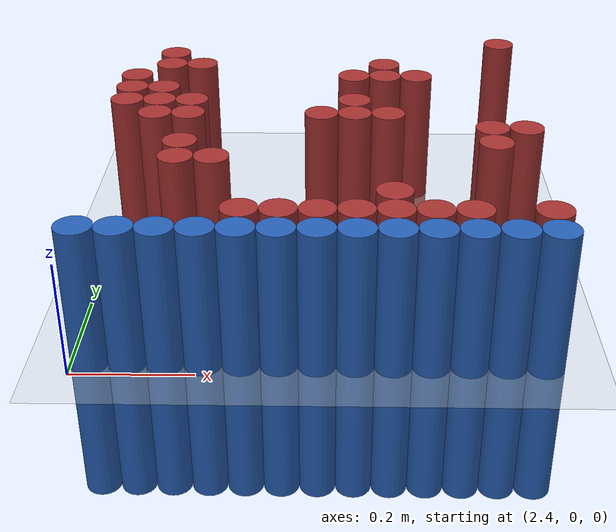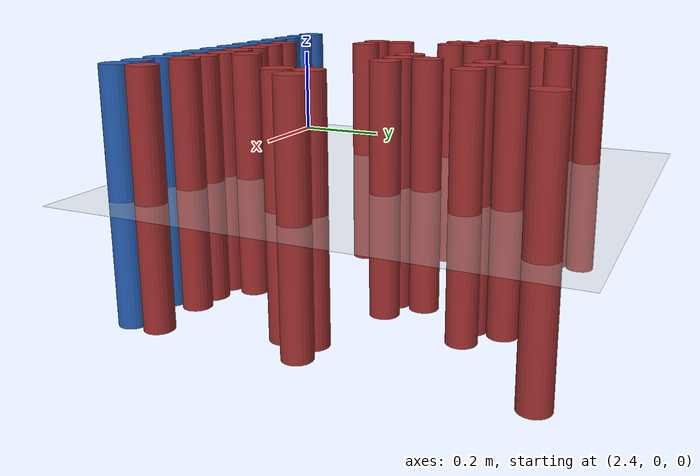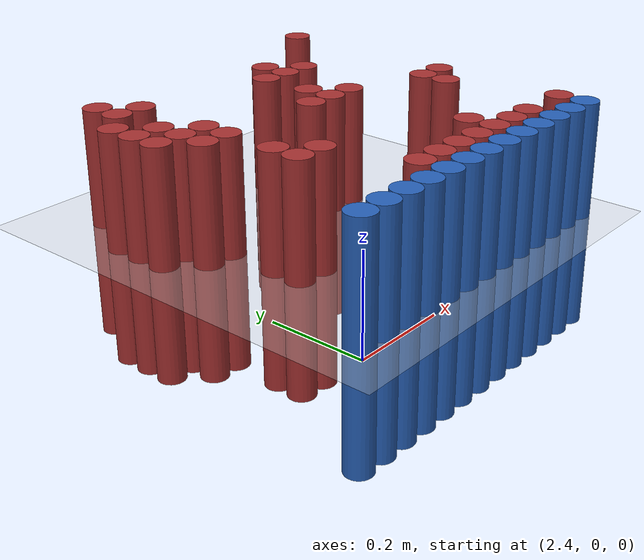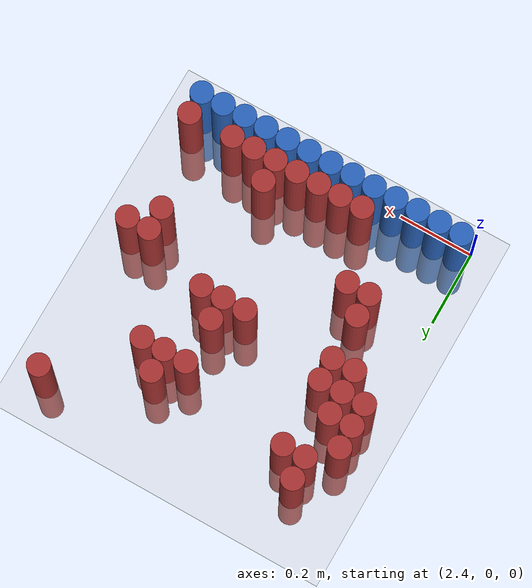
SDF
<sdf version="1.6">
 <world name="default">
  <model name="ground_plane">
   <static>1</static>
   <link name="link">
    <collision name="collision">
     <geometry><plane><normal>0 0 1</normal><size>100 100</size></plane></geometry>
     <surface><friction><ode><mu>100</mu><mu2>50</mu2></ode></friction></surface>
    </collision>
    <visual name="visual">
     <cast_shadows>0</cast_shadows>
     <geometry><plane><normal>0 0 1</normal><size>100 100</size></plane></geometry>
     <material>
      <script><uri>file://media/materials/scripts/gazebo.material</uri><name>Gazebo/Grey</name></script>
     </material>
    </visual>
   </link>
  </model>
  <model name="unit_cylinder_216">
   <static>1</static>
   <pose>3.150000 0.810000 0.000000 0.000000 0.000000 0.000000</pose>
   <link name="link">
    <inertial>
     <mass>1</mass>
     <inertia><ixx>0.145833</ixx><ixy>0</ixy><ixz>0</ixz><iyy>0.145833</iyy><iyz>0</iyz><izz>0.125</izz></inertia>
    </inertial>
    <collision name="collision">
     <geometry><cylinder><radius>0.030000</radius><length>0.5</length></cylinder></geometry>
    </collision>
    <visual name="visual">
     <geometry><cylinder><radius>0.030000</radius><length>0.5</length></cylinder></geometry>
     <material>
      <ambient>0.648000 0.192000 0.192000 1</ambient>
      <diffuse>0.648000 0.192000 0.192000 1</diffuse>
     </material>
     <material>
      <script><name>Gazebo/Grey</name><uri>file://media/materials/scripts/gazebo.material</uri></script>
     </material>
    </visual>
   </link>
  </model>
  <model name="unit_cylinder_219">
   <static>1</static>
   <pose>2.490000 0.750000 0.000000 0.000000 0.000000 0.000000</pose>
   <link name="link">
    <inertial>
     <mass>1</mass>
     <inertia><ixx>0.145833</ixx><ixy>0</ixy><ixz>0</ixz><iyy>0.145833</iyy><iyz>0</iyz><izz>0.125</izz></inertia>
    </inertial>
    <collision name="collision">
     <geometry><cylinder><radius>0.030000</radius><length>0.5</length></cylinder></geometry>
    </collision>
    <visual name="visual">
     <geometry><cylinder><radius>0.030000</radius><length>0.5</length></cylinder></geometry>
     <material>
      <ambient>0.648000 0.192000 0.192000 1</ambient>
      <diffuse>0.648000 0.192000 0.192000 1</diffuse>
     </material>
     <material>
      <script><name>Gazebo/Grey</name><uri>file://media/materials/scripts/gazebo.material</uri></script>
     </material>
    </visual>
   </link>
  </model>
  <model name="unit_cylinder_225">
   <static>1</static>
   <pose>2.490000 0.690000 0.000000 0.000000 0.000000 0.000000</pose>
   <link name="link">
    <inertial>
     <mass>1</mass>
     <inertia><ixx>0.145833</ixx><ixy>0</ixy><ixz>0</ixz><iyy>0.145833</iyy><iyz>0</iyz><izz>0.125</izz></inertia>
    </inertial>
    <collision name="collision">
     <geometry><cylinder><radius>0.030000</radius><length>0.5</length></cylinder></geometry>
    </collision>
    <visual name="visual">
     <geometry><cylinder><radius>0.030000</radius><length>0.5</length></cylinder></geometry>
     <material>
      <ambient>0.648000 0.192000 0.192000 1</ambient>
      <diffuse>0.648000 0.192000 0.192000 1</diffuse>
     </material>
     <material>
      <script><name>Gazebo/Grey</name><uri>file://media/materials/scripts/gazebo.material</uri></script>
     </material>
    </visual>
   </link>
  </model>
  <model name="unit_cylinder_226">
   <static>1</static>
   <pose>2.550000 0.690000 0.000000 0.000000 0.000000 0.000000</pose>
   <link name="link">
    <inertial>
     <mass>1</mass>
     <inertia><ixx>0.145833</ixx><ixy>0</ixy><ixz>0</ixz><iyy>0.145833</iyy><iyz>0</iyz><izz>0.125</izz></inertia>
    </inertial>
    <collision name="collision">
     <geometry><cylinder><radius>0.030000</radius><length>0.5</length></cylinder></geometry>
    </collision>
    <visual name="visual">
     <geometry><cylinder><radius>0.030000</radius><length>0.5</length></cylinder></geometry>
     <material>
      <ambient>0.648000 0.192000 0.192000 1</ambient>
      <diffuse>0.648000 0.192000 0.192000 1</diffuse>
     </material>
     <material>
      <script><name>Gazebo/Grey</name><uri>file://media/materials/scripts/gazebo.material</uri></script>
     </material>
    </visual>
   </link>
  </model>
  <model name="unit_cylinder_227">
   <static>1</static>
   <pose>2.910000 0.690000 0.000000 0.000000 0.000000 0.000000</pose>
   <link name="link">
    <inertial>
     <mass>1</mass>
     <inertia><ixx>0.145833</ixx><ixy>0</ixy><ixz>0</ixz><iyy>0.145833</iyy><iyz>0</iyz><izz>0.125</izz></inertia>
    </inertial>
    <collision name="collision">
     <geometry><cylinder><radius>0.030000</radius><length>0.5</length></cylinder></geometry>
    </collision>
    <visual name="visual">
     <geometry><cylinder><radius>0.030000</radius><length>0.5</length></cylinder></geometry>
     <material>
      <ambient>0.648000 0.192000 0.192000 1</ambient>
      <diffuse>0.648000 0.192000 0.192000 1</diffuse>
     </material>
     <material>
      <script><name>Gazebo/Grey</name><uri>file://media/materials/scripts/gazebo.material</uri></script>
     </material>
    </visual>
   </link>
  </model>
  <model name="unit_cylinder_231">
   <static>1</static>
   <pose>2.430000 0.630000 0.000000 0.000000 0.000000 0.000000</pose>
   <link name="link">
    <inertial>
     <mass>1</mass>
     <inertia><ixx>0.145833</ixx><ixy>0</ixy><ixz>0</ixz><iyy>0.145833</iyy><iyz>0</iyz><izz>0.125</izz></inertia>
    </inertial>
    <collision name="collision">
     <geometry><cylinder><radius>0.030000</radius><length>0.5</length></cylinder></geometry>
    </collision>
    <visual name="visual">
     <geometry><cylinder><radius>0.030000</radius><length>0.5</length></cylinder></geometry>
     <material>
      <ambient>0.648000 0.192000 0.192000 1</ambient>
      <diffuse>0.648000 0.192000 0.192000 1</diffuse>
     </material>
     <material>
      <script><name>Gazebo/Grey</name><uri>file://media/materials/scripts/gazebo.material</uri></script>
     </material>
    </visual>
   </link>
  </model>
  <model name="unit_cylinder_232">
   <static>1</static>
   <pose>2.850000 0.630000 0.000000 0.000000 0.000000 0.000000</pose>
   <link name="link">
    <inertial>
     <mass>1</mass>
     <inertia><ixx>0.145833</ixx><ixy>0</ixy><ixz>0</ixz><iyy>0.145833</iyy><iyz>0</iyz><izz>0.125</izz></inertia>
    </inertial>
    <collision name="collision">
     <geometry><cylinder><radius>0.030000</radius><length>0.5</length></cylinder></geometry>
    </collision>
    <visual name="visual">
     <geometry><cylinder><radius>0.030000</radius><length>0.5</length></cylinder></geometry>
     <material>
      <ambient>0.648000 0.192000 0.192000 1</ambient>
      <diffuse>0.648000 0.192000 0.192000 1</diffuse>
     </material>
     <material>
      <script><name>Gazebo/Grey</name><uri>file://media/materials/scripts/gazebo.material</uri></script>
     </material>
    </visual>
   </link>
  </model>
  <model name="unit_cylinder_233">
   <static>1</static>
   <pose>2.910000 0.630000 0.000000 0.000000 0.000000 0.000000</pose>
   <link name="link">
    <inertial>
     <mass>1</mass>
     <inertia><ixx>0.145833</ixx><ixy>0</ixy><ixz>0</ixz><iyy>0.145833</iyy><iyz>0</iyz><izz>0.125</izz></inertia>
    </inertial>
    <collision name="collision">
     <geometry><cylinder><radius>0.030000</radius><length>0.5</length></cylinder></geometry>
    </collision>
    <visual name="visual">
     <geometry><cylinder><radius>0.030000</radius><length>0.5</length></cylinder></geometry>
     <material>
      <ambient>0.648000 0.192000 0.192000 1</ambient>
      <diffuse>0.648000 0.192000 0.192000 1</diffuse>
     </material>
     <material>
      <script><name>Gazebo/Grey</name><uri>file://media/materials/scripts/gazebo.material</uri></script>
     </material>
    </visual>
   </link>
  </model>
  <model name="unit_cylinder_234">
   <static>1</static>
   <pose>2.970000 0.630000 0.000000 0.000000 0.000000 0.000000</pose>
   <link name="link">
    <inertial>
     <mass>1</mass>
     <inertia><ixx>0.145833</ixx><ixy>0</ixy><ixz>0</ixz><iyy>0.145833</iyy><iyz>0</iyz><izz>0.125</izz></inertia>
    </inertial>
    <collision name="collision">
     <geometry><cylinder><radius>0.030000</radius><length>0.5</length></cylinder></geometry>
    </collision>
    <visual name="visual">
     <geometry><cylinder><radius>0.030000</radius><length>0.5</length></cylinder></geometry>
     <material>
      <ambient>0.648000 0.192000 0.192000 1</ambient>
      <diffuse>0.648000 0.192000 0.192000 1</diffuse>
     </material>
     <material>
      <script><name>Gazebo/Grey</name><uri>file://media/materials/scripts/gazebo.material</uri></script>
     </material>
    </visual>
   </link>
  </model>
  <model name="unit_cylinder_237">
   <static>1</static>
   <pose>2.430000 0.570000 0.000000 0.000000 0.000000 0.000000</pose>
   <link name="link">
    <inertial>
     <mass>1</mass>
     <inertia><ixx>0.145833</ixx><ixy>0</ixy><ixz>0</ixz><iyy>0.145833</iyy><iyz>0</iyz><izz>0.125</izz></inertia>
    </inertial>
    <collision name="collision">
     <geometry><cylinder><radius>0.030000</radius><length>0.5</length></cylinder></geometry>
    </collision>
    <visual name="visual">
     <geometry><cylinder><radius>0.030000</radius><length>0.5</length></cylinder></geometry>
     <material>
      <ambient>0.648000 0.192000 0.192000 1</ambient>
      <diffuse>0.648000 0.192000 0.192000 1</diffuse>
     </material>
     <material>
      <script><name>Gazebo/Grey</name><uri>file://media/materials/scripts/gazebo.material</uri></script>
     </material>
    </visual>
   </link>
  </model>
  <model name="unit_cylinder_238">
   <static>1</static>
   <pose>2.490000 0.570000 0.000000 0.000000 0.000000 0.000000</pose>
   <link name="link">
    <inertial>
     <mass>1</mass>
     <inertia><ixx>0.145833</ixx><ixy>0</ixy><ixz>0</ixz><iyy>0.145833</iyy><iyz>0</iyz><izz>0.125</izz></inertia>
    </inertial>
    <collision name="collision">
     <geometry><cylinder><radius>0.030000</radius><length>0.5</length></cylinder></geometry>
    </collision>
    <visual name="visual">
     <geometry><cylinder><radius>0.030000</radius><length>0.5</length></cylinder></geometry>
     <material>
      <ambient>0.648000 0.192000 0.192000 1</ambient>
      <diffuse>0.648000 0.192000 0.192000 1</diffuse>
     </material>
     <material>
      <script><name>Gazebo/Grey</name><uri>file://media/materials/scripts/gazebo.material</uri></script>
     </material>
    </visual>
   </link>
  </model>
  <model name="unit_cylinder_245">
   <static>1</static>
   <pose>2.430000 0.510000 0.000000 0.000000 0.000000 0.000000</pose>
   <link name="link">
    <inertial>
     <mass>1</mass>
     <inertia><ixx>0.145833</ixx><ixy>0</ixy><ixz>0</ixz><iyy>0.145833</iyy><iyz>0</iyz><izz>0.125</izz></inertia>
    </inertial>
    <collision name="collision">
     <geometry><cylinder><radius>0.030000</radius><length>0.5</length></cylinder></geometry>
    </collision>
    <visual name="visual">
     <geometry><cylinder><radius>0.030000</radius><length>0.5</length></cylinder></geometry>
     <material>
      <ambient>0.648000 0.192000 0.192000 1</ambient>
      <diffuse>0.648000 0.192000 0.192000 1</diffuse>
     </material>
     <material>
      <script><name>Gazebo/Grey</name><uri>file://media/materials/scripts/gazebo.material</uri></script>
     </material>
    </visual>
   </link>
  </model>
  <model name="unit_cylinder_246">
   <static>1</static>
   <pose>2.490000 0.510000 0.000000 0.000000 0.000000 0.000000</pose>
   <link name="link">
    <inertial>
     <mass>1</mass>
     <inertia><ixx>0.145833</ixx><ixy>0</ixy><ixz>0</ixz><iyy>0.145833</iyy><iyz>0</iyz><izz>0.125</izz></inertia>
    </inertial>
    <collision name="collision">
     <geometry><cylinder><radius>0.030000</radius><length>0.5</length></cylinder></geometry>
    </collision>
    <visual name="visual">
     <geometry><cylinder><radius>0.030000</radius><length>0.5</length></cylinder></geometry>
     <material>
      <ambient>0.648000 0.192000 0.192000 1</ambient>
      <diffuse>0.648000 0.192000 0.192000 1</diffuse>
     </material>
     <material>
      <script><name>Gazebo/Grey</name><uri>file://media/materials/scripts/gazebo.material</uri></script>
     </material>
    </visual>
   </link>
  </model>
  <model name="unit_cylinder_247">
   <static>1</static>
   <pose>2.550000 0.510000 0.000000 0.000000 0.000000 0.000000</pose>
   <link name="link">
    <inertial>
     <mass>1</mass>
     <inertia><ixx>0.145833</ixx><ixy>0</ixy><ixz>0</ixz><iyy>0.145833</iyy><iyz>0</iyz><izz>0.125</izz></inertia>
    </inertial>
    <collision name="collision">
     <geometry><cylinder><radius>0.030000</radius><length>0.5</length></cylinder></geometry>
    </collision>
    <visual name="visual">
     <geometry><cylinder><radius>0.030000</radius><length>0.5</length></cylinder></geometry>
     <material>
      <ambient>0.648000 0.192000 0.192000 1</ambient>
      <diffuse>0.648000 0.192000 0.192000 1</diffuse>
     </material>
     <material>
      <script><name>Gazebo/Grey</name><uri>file://media/materials/scripts/gazebo.material</uri></script>
     </material>
    </visual>
   </link>
  </model>
  <model name="unit_cylinder_248">
   <static>1</static>
   <pose>2.850000 0.510000 0.000000 0.000000 0.000000 0.000000</pose>
   <link name="link">
    <inertial>
     <mass>1</mass>
     <inertia><ixx>0.145833</ixx><ixy>0</ixy><ixz>0</ixz><iyy>0.145833</iyy><iyz>0</iyz><izz>0.125</izz></inertia>
    </inertial>
    <collision name="collision">
     <geometry><cylinder><radius>0.030000</radius><length>0.5</length></cylinder></geometry>
    </collision>
    <visual name="visual">
     <geometry><cylinder><radius>0.030000</radius><length>0.5</length></cylinder></geometry>
     <material>
      <ambient>0.648000 0.192000 0.192000 1</ambient>
      <diffuse>0.648000 0.192000 0.192000 1</diffuse>
     </material>
     <material>
      <script><name>Gazebo/Grey</name><uri>file://media/materials/scripts/gazebo.material</uri></script>
     </material>
    </visual>
   </link>
  </model>
  <model name="unit_cylinder_255">
   <static>1</static>
   <pose>2.490000 0.450000 0.000000 0.000000 0.000000 0.000000</pose>
   <link name="link">
    <inertial>
     <mass>1</mass>
     <inertia><ixx>0.145833</ixx><ixy>0</ixy><ixz>0</ixz><iyy>0.145833</iyy><iyz>0</iyz><izz>0.125</izz></inertia>
    </inertial>
    <collision name="collision">
     <geometry><cylinder><radius>0.030000</radius><length>0.5</length></cylinder></geometry>
    </collision>
    <visual name="visual">
     <geometry><cylinder><radius>0.030000</radius><length>0.5</length></cylinder></geometry>
     <material>
      <ambient>0.648000 0.192000 0.192000 1</ambient>
      <diffuse>0.648000 0.192000 0.192000 1</diffuse>
     </material>
     <material>
      <script><name>Gazebo/Grey</name><uri>file://media/materials/scripts/gazebo.material</uri></script>
     </material>
    </visual>
   </link>
  </model>
  <model name="unit_cylinder_256">
   <static>1</static>
   <pose>2.550000 0.450000 0.000000 0.000000 0.000000 0.000000</pose>
   <link name="link">
    <inertial>
     <mass>1</mass>
     <inertia><ixx>0.145833</ixx><ixy>0</ixy><ixz>0</ixz><iyy>0.145833</iyy><iyz>0</iyz><izz>0.125</izz></inertia>
    </inertial>
    <collision name="collision">
     <geometry><cylinder><radius>0.030000</radius><length>0.5</length></cylinder></geometry>
    </collision>
    <visual name="visual">
     <geometry><cylinder><radius>0.030000</radius><length>0.5</length></cylinder></geometry>
     <material>
      <ambient>0.648000 0.192000 0.192000 1</ambient>
      <diffuse>0.648000 0.192000 0.192000 1</diffuse>
     </material>
     <material>
      <script><name>Gazebo/Grey</name><uri>file://media/materials/scripts/gazebo.material</uri></script>
     </material>
    </visual>
   </link>
  </model>
  <model name="unit_cylinder_257">
   <static>1</static>
   <pose>2.790000 0.450000 0.000000 0.000000 0.000000 0.000000</pose>
   <link name="link">
    <inertial>
     <mass>1</mass>
     <inertia><ixx>0.145833</ixx><ixy>0</ixy><ixz>0</ixz><iyy>0.145833</iyy><iyz>0</iyz><izz>0.125</izz></inertia>
    </inertial>
    <collision name="collision">
     <geometry><cylinder><radius>0.030000</radius><length>0.5</length></cylinder></geometry>
    </collision>
    <visual name="visual">
     <geometry><cylinder><radius>0.030000</radius><length>0.5</length></cylinder></geometry>
     <material>
      <ambient>0.648000 0.192000 0.192000 1</ambient>
      <diffuse>0.648000 0.192000 0.192000 1</diffuse>
     </material>
     <material>
      <script><name>Gazebo/Grey</name><uri>file://media/materials/scripts/gazebo.material</uri></script>
     </material>
    </visual>
   </link>
  </model>
  <model name="unit_cylinder_258">
   <static>1</static>
   <pose>2.850000 0.450000 0.000000 0.000000 0.000000 0.000000</pose>
   <link name="link">
    <inertial>
     <mass>1</mass>
     <inertia><ixx>0.145833</ixx><ixy>0</ixy><ixz>0</ixz><iyy>0.145833</iyy><iyz>0</iyz><izz>0.125</izz></inertia>
    </inertial>
    <collision name="collision">
     <geometry><cylinder><radius>0.030000</radius><length>0.5</length></cylinder></geometry>
    </collision>
    <visual name="visual">
     <geometry><cylinder><radius>0.030000</radius><length>0.5</length></cylinder></geometry>
     <material>
      <ambient>0.648000 0.192000 0.192000 1</ambient>
      <diffuse>0.648000 0.192000 0.192000 1</diffuse>
     </material>
     <material>
      <script><name>Gazebo/Grey</name><uri>file://media/materials/scripts/gazebo.material</uri></script>
     </material>
    </visual>
   </link>
  </model>
  <model name="unit_cylinder_259">
   <static>1</static>
   <pose>2.910000 0.450000 0.000000 0.000000 0.000000 0.000000</pose>
   <link name="link">
    <inertial>
     <mass>1</mass>
     <inertia><ixx>0.145833</ixx><ixy>0</ixy><ixz>0</ixz><iyy>0.145833</iyy><iyz>0</iyz><izz>0.125</izz></inertia>
    </inertial>
    <collision name="collision">
     <geometry><cylinder><radius>0.030000</radius><length>0.5</length></cylinder></geometry>
    </collision>
    <visual name="visual">
     <geometry><cylinder><radius>0.030000</radius><length>0.5</length></cylinder></geometry>
     <material>
      <ambient>0.648000 0.192000 0.192000 1</ambient>
      <diffuse>0.648000 0.192000 0.192000 1</diffuse>
     </material>
     <material>
      <script><name>Gazebo/Grey</name><uri>file://media/materials/scripts/gazebo.material</uri></script>
     </material>
    </visual>
   </link>
  </model>
  <model name="unit_cylinder_267">
   <static>1</static>
   <pose>3.090000 0.390000 0.000000 0.000000 0.000000 0.000000</pose>
   <link name="link">
    <inertial>
     <mass>1</mass>
     <inertia><ixx>0.145833</ixx><ixy>0</ixy><ixz>0</ixz><iyy>0.145833</iyy><iyz>0</iyz><izz>0.125</izz></inertia>
    </inertial>
    <collision name="collision">
     <geometry><cylinder><radius>0.030000</radius><length>0.5</length></cylinder></geometry>
    </collision>
    <visual name="visual">
     <geometry><cylinder><radius>0.030000</radius><length>0.5</length></cylinder></geometry>
     <material>
      <ambient>0.648000 0.192000 0.192000 1</ambient>
      <diffuse>0.648000 0.192000 0.192000 1</diffuse>
     </material>
     <material>
      <script><name>Gazebo/Grey</name><uri>file://media/materials/scripts/gazebo.material</uri></script>
     </material>
    </visual>
   </link>
  </model>
  <model name="unit_cylinder_268">
   <static>1</static>
   <pose>3.150000 0.390000 0.000000 0.000000 0.000000 0.000000</pose>
   <link name="link">
    <inertial>
     <mass>1</mass>
     <inertia><ixx>0.145833</ixx><ixy>0</ixy><ixz>0</ixz><iyy>0.145833</iyy><iyz>0</iyz><izz>0.125</izz></inertia>
    </inertial>
    <collision name="collision">
     <geometry><cylinder><radius>0.030000</radius><length>0.5</length></cylinder></geometry>
    </collision>
    <visual name="visual">
     <geometry><cylinder><radius>0.030000</radius><length>0.5</length></cylinder></geometry>
     <material>
      <ambient>0.648000 0.192000 0.192000 1</ambient>
      <diffuse>0.648000 0.192000 0.192000 1</diffuse>
     </material>
     <material>
      <script><name>Gazebo/Grey</name><uri>file://media/materials/scripts/gazebo.material</uri></script>
     </material>
    </visual>
   </link>
  </model>
  <model name="unit_cylinder_272">
   <static>1</static>
   <pose>2.550000 0.330000 0.000000 0.000000 0.000000 0.000000</pose>
   <link name="link">
    <inertial>
     <mass>1</mass>
     <inertia><ixx>0.145833</ixx><ixy>0</ixy><ixz>0</ixz><iyy>0.145833</iyy><iyz>0</iyz><izz>0.125</izz></inertia>
    </inertial>
    <collision name="collision">
     <geometry><cylinder><radius>0.030000</radius><length>0.5</length></cylinder></geometry>
    </collision>
    <visual name="visual">
     <geometry><cylinder><radius>0.030000</radius><length>0.5</length></cylinder></geometry>
     <material>
      <ambient>0.648000 0.192000 0.192000 1</ambient>
      <diffuse>0.648000 0.192000 0.192000 1</diffuse>
     </material>
     <material>
      <script><name>Gazebo/Grey</name><uri>file://media/materials/scripts/gazebo.material</uri></script>
     </material>
    </visual>
   </link>
  </model>
  <model name="unit_cylinder_273">
   <static>1</static>
   <pose>3.090000 0.330000 0.000000 0.000000 0.000000 0.000000</pose>
   <link name="link">
    <inertial>
     <mass>1</mass>
     <inertia><ixx>0.145833</ixx><ixy>0</ixy><ixz>0</ixz><iyy>0.145833</iyy><iyz>0</iyz><izz>0.125</izz></inertia>
    </inertial>
    <collision name="collision">
     <geometry><cylinder><radius>0.030000</radius><length>0.5</length></cylinder></geometry>
    </collision>
    <visual name="visual">
     <geometry><cylinder><radius>0.030000</radius><length>0.5</length></cylinder></geometry>
     <material>
      <ambient>0.648000 0.192000 0.192000 1</ambient>
      <diffuse>0.648000 0.192000 0.192000 1</diffuse>
     </material>
     <material>
      <script><name>Gazebo/Grey</name><uri>file://media/materials/scripts/gazebo.material</uri></script>
     </material>
    </visual>
   </link>
  </model>
  <model name="unit_cylinder_278">
   <static>1</static>
   <pose>2.550000 0.270000 0.000000 0.000000 0.000000 0.000000</pose>
   <link name="link">
    <inertial>
     <mass>1</mass>
     <inertia><ixx>0.145833</ixx><ixy>0</ixy><ixz>0</ixz><iyy>0.145833</iyy><iyz>0</iyz><izz>0.125</izz></inertia>
    </inertial>
    <collision name="collision">
     <geometry><cylinder><radius>0.030000</radius><length>0.5</length></cylinder></geometry>
    </collision>
    <visual name="visual">
     <geometry><cylinder><radius>0.030000</radius><length>0.5</length></cylinder></geometry>
     <material>
      <ambient>0.648000 0.192000 0.192000 1</ambient>
      <diffuse>0.648000 0.192000 0.192000 1</diffuse>
     </material>
     <material>
      <script><name>Gazebo/Grey</name><uri>file://media/materials/scripts/gazebo.material</uri></script>
     </material>
    </visual>
   </link>
  </model>
  <model name="unit_cylinder_279">
   <static>1</static>
   <pose>2.610000 0.270000 0.000000 0.000000 0.000000 0.000000</pose>
   <link name="link">
    <inertial>
     <mass>1</mass>
     <inertia><ixx>0.145833</ixx><ixy>0</ixy><ixz>0</ixz><iyy>0.145833</iyy><iyz>0</iyz><izz>0.125</izz></inertia>
    </inertial>
    <collision name="collision">
     <geometry><cylinder><radius>0.030000</radius><length>0.5</length></cylinder></geometry>
    </collision>
    <visual name="visual">
     <geometry><cylinder><radius>0.030000</radius><length>0.5</length></cylinder></geometry>
     <material>
      <ambient>0.648000 0.192000 0.192000 1</ambient>
      <diffuse>0.648000 0.192000 0.192000 1</diffuse>
     </material>
     <material>
      <script><name>Gazebo/Grey</name><uri>file://media/materials/scripts/gazebo.material</uri></script>
     </material>
    </visual>
   </link>
  </model>
  <model name="unit_cylinder_292">
   <static>1</static>
   <pose>2.910000 0.150000 0.000000 0.000000 0.000000 0.000000</pose>
   <link name="link">
    <inertial>
     <mass>1</mass>
     <inertia><ixx>0.145833</ixx><ixy>0</ixy><ixz>0</ixz><iyy>0.145833</iyy><iyz>0</iyz><izz>0.125</izz></inertia>
    </inertial>
    <collision name="collision">
     <geometry><cylinder><radius>0.030000</radius><length>0.5</length></cylinder></geometry>
    </collision>
    <visual name="visual">
     <geometry><cylinder><radius>0.030000</radius><length>0.5</length></cylinder></geometry>
     <material>
      <ambient>0.648000 0.192000 0.192000 1</ambient>
      <diffuse>0.648000 0.192000 0.192000 1</diffuse>
     </material>
     <material>
      <script><name>Gazebo/Grey</name><uri>file://media/materials/scripts/gazebo.material</uri></script>
     </material>
    </visual>
   </link>
  </model>
  <model name="unit_cylinder_299">
   <static>1</static>
   <pose>2.670000 0.090000 0.000000 0.000000 0.000000 0.000000</pose>
   <link name="link">
    <inertial>
     <mass>1</mass>
     <inertia><ixx>0.145833</ixx><ixy>0</ixy><ixz>0</ixz><iyy>0.145833</iyy><iyz>0</iyz><izz>0.125</izz></inertia>
    </inertial>
    <collision name="collision">
     <geometry><cylinder><radius>0.030000</radius><length>0.5</length></cylinder></geometry>
    </collision>
    <visual name="visual">
     <geometry><cylinder><radius>0.030000</radius><length>0.5</length></cylinder></geometry>
     <material>
      <ambient>0.648000 0.192000 0.192000 1</ambient>
      <diffuse>0.648000 0.192000 0.192000 1</diffuse>
     </material>
     <material>
      <script><name>Gazebo/Grey</name><uri>file://media/materials/scripts/gazebo.material</uri></script>
     </material>
    </visual>
   </link>
  </model>
  <model name="unit_cylinder_300">
   <static>1</static>
   <pose>2.730000 0.090000 0.000000 0.000000 0.000000 0.000000</pose>
   <link name="link">
    <inertial>
     <mass>1</mass>
     <inertia><ixx>0.145833</ixx><ixy>0</ixy><ixz>0</ixz><iyy>0.145833</iyy><iyz>0</iyz><izz>0.125</izz></inertia>
    </inertial>
    <collision name="collision">
     <geometry><cylinder><radius>0.030000</radius><length>0.5</length></cylinder></geometry>
    </collision>
    <visual name="visual">
     <geometry><cylinder><radius>0.030000</radius><length>0.5</length></cylinder></geometry>
     <material>
      <ambient>0.648000 0.192000 0.192000 1</ambient>
      <diffuse>0.648000 0.192000 0.192000 1</diffuse>
     </material>
     <material>
      <script><name>Gazebo/Grey</name><uri>file://media/materials/scripts/gazebo.material</uri></script>
     </material>
    </visual>
   </link>
  </model>
  <model name="unit_cylinder_301">
   <static>1</static>
   <pose>2.790000 0.090000 0.000000 0.000000 0.000000 0.000000</pose>
   <link name="link">
    <inertial>
     <mass>1</mass>
     <inertia><ixx>0.145833</ixx><ixy>0</ixy><ixz>0</ixz><iyy>0.145833</iyy><iyz>0</iyz><izz>0.125</izz></inertia>
    </inertial>
    <collision name="collision">
     <geometry><cylinder><radius>0.030000</radius><length>0.5</length></cylinder></geometry>
    </collision>
    <visual name="visual">
     <geometry><cylinder><radius>0.030000</radius><length>0.5</length></cylinder></geometry>
     <material>
      <ambient>0.648000 0.192000 0.192000 1</ambient>
      <diffuse>0.648000 0.192000 0.192000 1</diffuse>
     </material>
     <material>
      <script><name>Gazebo/Grey</name><uri>file://media/materials/scripts/gazebo.material</uri></script>
     </material>
    </visual>
   </link>
  </model>
  <model name="unit_cylinder_302">
   <static>1</static>
   <pose>2.850000 0.090000 0.000000 0.000000 0.000000 0.000000</pose>
   <link name="link">
    <inertial>
     <mass>1</mass>
     <inertia><ixx>0.145833</ixx><ixy>0</ixy><ixz>0</ixz><iyy>0.145833</iyy><iyz>0</iyz><izz>0.125</izz></inertia>
    </inertial>
    <collision name="collision">
     <geometry><cylinder><radius>0.030000</radius><length>0.5</length></cylinder></geometry>
    </collision>
    <visual name="visual">
     <geometry><cylinder><radius>0.030000</radius><length>0.5</length></cylinder></geometry>
     <material>
      <ambient>0.648000 0.192000 0.192000 1</ambient>
      <diffuse>0.648000 0.192000 0.192000 1</diffuse>
     </material>
     <material>
      <script><name>Gazebo/Grey</name><uri>file://media/materials/scripts/gazebo.material</uri></script>
     </material>
    </visual>
   </link>
  </model>
  <model name="unit_cylinder_303">
   <static>1</static>
   <pose>2.910000 0.090000 0.000000 0.000000 0.000000 0.000000</pose>
   <link name="link">
    <inertial>
     <mass>1</mass>
     <inertia><ixx>0.145833</ixx><ixy>0</ixy><ixz>0</ixz><iyy>0.145833</iyy><iyz>0</iyz><izz>0.125</izz></inertia>
    </inertial>
    <collision name="collision">
     <geometry><cylinder><radius>0.030000</radius><length>0.5</length></cylinder></geometry>
    </collision>
    <visual name="visual">
     <geometry><cylinder><radius>0.030000</radius><length>0.5</length></cylinder></geometry>
     <material>
      <ambient>0.648000 0.192000 0.192000 1</ambient>
      <diffuse>0.648000 0.192000 0.192000 1</diffuse>
     </material>
     <material>
      <script><name>Gazebo/Grey</name><uri>file://media/materials/scripts/gazebo.material</uri></script>
     </material>
    </visual>
   </link>
  </model>
  <model name="unit_cylinder_304">
   <static>1</static>
   <pose>2.970000 0.090000 0.000000 0.000000 0.000000 0.000000</pose>
   <link name="link">
    <inertial>
     <mass>1</mass>
     <inertia><ixx>0.145833</ixx><ixy>0</ixy><ixz>0</ixz><iyy>0.145833</iyy><iyz>0</iyz><izz>0.125</izz></inertia>
    </inertial>
    <collision name="collision">
     <geometry><cylinder><radius>0.030000</radius><length>0.5</length></cylinder></geometry>
    </collision>
    <visual name="visual">
     <geometry><cylinder><radius>0.030000</radius><length>0.5</length></cylinder></geometry>
     <material>
      <ambient>0.648000 0.192000 0.192000 1</ambient>
      <diffuse>0.648000 0.192000 0.192000 1</diffuse>
     </material>
     <material>
      <script><name>Gazebo/Grey</name><uri>file://media/materials/scripts/gazebo.material</uri></script>
     </material>
    </visual>
   </link>
  </model>
  <model name="unit_cylinder_305">
   <static>1</static>
   <pose>3.030000 0.090000 0.000000 0.000000 0.000000 0.000000</pose>
   <link name="link">
    <inertial>
     <mass>1</mass>
     <inertia><ixx>0.145833</ixx><ixy>0</ixy><ixz>0</ixz><iyy>0.145833</iyy><iyz>0</iyz><izz>0.125</izz></inertia>
    </inertial>
    <collision name="collision">
     <geometry><cylinder><radius>0.030000</radius><length>0.5</length></cylinder></geometry>
    </collision>
    <visual name="visual">
     <geometry><cylinder><radius>0.030000</radius><length>0.5</length></cylinder></geometry>
     <material>
      <ambient>0.648000 0.192000 0.192000 1</ambient>
      <diffuse>0.648000 0.192000 0.192000 1</diffuse>
     </material>
     <material>
      <script><name>Gazebo/Grey</name><uri>file://media/materials/scripts/gazebo.material</uri></script>
     </material>
    </visual>
   </link>
  </model>
  <model name="unit_cylinder_306">
   <static>1</static>
   <pose>3.150000 0.090000 0.000000 0.000000 0.000000 0.000000</pose>
   <link name="link">
    <inertial>
     <mass>1</mass>
     <inertia><ixx>0.145833</ixx><ixy>0</ixy><ixz>0</ixz><iyy>0.145833</iyy><iyz>0</iyz><izz>0.125</izz></inertia>
    </inertial>
    <collision name="collision">
     <geometry><cylinder><radius>0.030000</radius><length>0.5</length></cylinder></geometry>
    </collision>
    <visual name="visual">
     <geometry><cylinder><radius>0.030000</radius><length>0.5</length></cylinder></geometry>
     <material>
      <ambient>0.648000 0.192000 0.192000 1</ambient>
      <diffuse>0.648000 0.192000 0.192000 1</diffuse>
     </material>
     <material>
      <script><name>Gazebo/Grey</name><uri>file://media/materials/scripts/gazebo.material</uri></script>
     </material>
    </visual>
   </link>
  </model>
  <model name="unit_cylinder_316">
   <static>1</static>
   <pose>2.430000 0.030000 0.000000 0.000000 0.000000 0.000000</pose>
   <link name="link">
    <inertial>
     <mass>1</mass>
     <inertia><ixx>0.145833</ixx><ixy>0</ixy><ixz>0</ixz><iyy>0.145833</iyy><iyz>0</iyz><izz>0.125</izz></inertia>
    </inertial>
    <collision name="collision">
     <geometry><cylinder><radius>0.030000</radius><length>0.5</length></cylinder></geometry>
    </collision>
    <visual name="visual">
     <geometry><cylinder><radius>0.030000</radius><length>0.5</length></cylinder></geometry>
     <material>
      <ambient>0.152000 0.379000 0.720000 1</ambient>
      <diffuse>0.152000 0.379000 0.720000 1</diffuse>
     </material>
     <material>
      <script><name>Gazebo/Grey</name><uri>file://media/materials/scripts/gazebo.material</uri></script>
     </material>
    </visual>
   </link>
  </model>
  <model name="unit_cylinder_317">
   <static>1</static>
   <pose>2.490000 0.030000 0.000000 0.000000 0.000000 0.000000</pose>
   <link name="link">
    <inertial>
     <mass>1</mass>
     <inertia><ixx>0.145833</ixx><ixy>0</ixy><ixz>0</ixz><iyy>0.145833</iyy><iyz>0</iyz><izz>0.125</izz></inertia>
    </inertial>
    <collision name="collision">
     <geometry><cylinder><radius>0.030000</radius><length>0.5</length></cylinder></geometry>
    </collision>
    <visual name="visual">
     <geometry><cylinder><radius>0.030000</radius><length>0.5</length></cylinder></geometry>
     <material>
      <ambient>0.152000 0.379000 0.720000 1</ambient>
      <diffuse>0.152000 0.379000 0.720000 1</diffuse>
     </material>
     <material>
      <script><name>Gazebo/Grey</name><uri>file://media/materials/scripts/gazebo.material</uri></script>
     </material>
    </visual>
   </link>
  </model>
  <model name="unit_cylinder_318">
   <static>1</static>
   <pose>2.550000 0.030000 0.000000 0.000000 0.000000 0.000000</pose>
   <link name="link">
    <inertial>
     <mass>1</mass>
     <inertia><ixx>0.145833</ixx><ixy>0</ixy><ixz>0</ixz><iyy>0.145833</iyy><iyz>0</iyz><izz>0.125</izz></inertia>
    </inertial>
    <collision name="collision">
     <geometry><cylinder><radius>0.030000</radius><length>0.5</length></cylinder></geometry>
    </collision>
    <visual name="visual">
     <geometry><cylinder><radius>0.030000</radius><length>0.5</length></cylinder></geometry>
     <material>
      <ambient>0.152000 0.379000 0.720000 1</ambient>
      <diffuse>0.152000 0.379000 0.720000 1</diffuse>
     </material>
     <material>
      <script><name>Gazebo/Grey</name><uri>file://media/materials/scripts/gazebo.material</uri></script>
     </material>
    </visual>
   </link>
  </model>
  <model name="unit_cylinder_319">
   <static>1</static>
   <pose>2.610000 0.030000 0.000000 0.000000 0.000000 0.000000</pose>
   <link name="link">
    <inertial>
     <mass>1</mass>
     <inertia><ixx>0.145833</ixx><ixy>0</ixy><ixz>0</ixz><iyy>0.145833</iyy><iyz>0</iyz><izz>0.125</izz></inertia>
    </inertial>
    <collision name="collision">
     <geometry><cylinder><radius>0.030000</radius><length>0.5</length></cylinder></geometry>
    </collision>
    <visual name="visual">
     <geometry><cylinder><radius>0.030000</radius><length>0.5</length></cylinder></geometry>
     <material>
      <ambient>0.152000 0.379000 0.720000 1</ambient>
      <diffuse>0.152000 0.379000 0.720000 1</diffuse>
     </material>
     <material>
      <script><name>Gazebo/Grey</name><uri>file://media/materials/scripts/gazebo.material</uri></script>
     </material>
    </visual>
   </link>
  </model>
  <model name="unit_cylinder_320">
   <static>1</static>
   <pose>2.670000 0.030000 0.000000 0.000000 0.000000 0.000000</pose>
   <link name="link">
    <inertial>
     <mass>1</mass>
     <inertia><ixx>0.145833</ixx><ixy>0</ixy><ixz>0</ixz><iyy>0.145833</iyy><iyz>0</iyz><izz>0.125</izz></inertia>
    </inertial>
    <collision name="collision">
     <geometry><cylinder><radius>0.030000</radius><length>0.5</length></cylinder></geometry>
    </collision>
    <visual name="visual">
     <geometry><cylinder><radius>0.030000</radius><length>0.5</length></cylinder></geometry>
     <material>
      <ambient>0.152000 0.379000 0.720000 1</ambient>
      <diffuse>0.152000 0.379000 0.720000 1</diffuse>
     </material>
     <material>
      <script><name>Gazebo/Grey</name><uri>file://media/materials/scripts/gazebo.material</uri></script>
     </material>
    </visual>
   </link>
  </model>
  <model name="unit_cylinder_321">
   <static>1</static>
   <pose>2.730000 0.030000 0.000000 0.000000 0.000000 0.000000</pose>
   <link name="link">
    <inertial>
     <mass>1</mass>
     <inertia><ixx>0.145833</ixx><ixy>0</ixy><ixz>0</ixz><iyy>0.145833</iyy><iyz>0</iyz><izz>0.125</izz></inertia>
    </inertial>
    <collision name="collision">
     <geometry><cylinder><radius>0.030000</radius><length>0.5</length></cylinder></geometry>
    </collision>
    <visual name="visual">
     <geometry><cylinder><radius>0.030000</radius><length>0.5</length></cylinder></geometry>
     <material>
      <ambient>0.152000 0.379000 0.720000 1</ambient>
      <diffuse>0.152000 0.379000 0.720000 1</diffuse>
     </material>
     <material>
      <script><name>Gazebo/Grey</name><uri>file://media/materials/scripts/gazebo.material</uri></script>
     </material>
    </visual>
   </link>
  </model>
  <model name="unit_cylinder_322">
   <static>1</static>
   <pose>2.790000 0.030000 0.000000 0.000000 0.000000 0.000000</pose>
   <link name="link">
    <inertial>
     <mass>1</mass>
     <inertia><ixx>0.145833</ixx><ixy>0</ixy><ixz>0</ixz><iyy>0.145833</iyy><iyz>0</iyz><izz>0.125</izz></inertia>
    </inertial>
    <collision name="collision">
     <geometry><cylinder><radius>0.030000</radius><length>0.5</length></cylinder></geometry>
    </collision>
    <visual name="visual">
     <geometry><cylinder><radius>0.030000</radius><length>0.5</length></cylinder></geometry>
     <material>
      <ambient>0.152000 0.379000 0.720000 1</ambient>
      <diffuse>0.152000 0.379000 0.720000 1</diffuse>
     </material>
     <material>
      <script><name>Gazebo/Grey</name><uri>file://media/materials/scripts/gazebo.material</uri></script>
     </material>
    </visual>
   </link>
  </model>
  <model name="unit_cylinder_323">
   <static>1</static>
   <pose>2.850000 0.030000 0.000000 0.000000 0.000000 0.000000</pose>
   <link name="link">
    <inertial>
     <mass>1</mass>
     <inertia><ixx>0.145833</ixx><ixy>0</ixy><ixz>0</ixz><iyy>0.145833</iyy><iyz>0</iyz><izz>0.125</izz></inertia>
    </inertial>
    <collision name="collision">
     <geometry><cylinder><radius>0.030000</radius><length>0.5</length></cylinder></geometry>
    </collision>
    <visual name="visual">
     <geometry><cylinder><radius>0.030000</radius><length>0.5</length></cylinder></geometry>
     <material>
      <ambient>0.152000 0.379000 0.720000 1</ambient>
      <diffuse>0.152000 0.379000 0.720000 1</diffuse>
     </material>
     <material>
      <script><name>Gazebo/Grey</name><uri>file://media/materials/scripts/gazebo.material</uri></script>
     </material>
    </visual>
   </link>
  </model>
  <model name="unit_cylinder_324">
   <static>1</static>
   <pose>2.910000 0.030000 0.000000 0.000000 0.000000 0.000000</pose>
   <link name="link">
    <inertial>
     <mass>1</mass>
     <inertia><ixx>0.145833</ixx><ixy>0</ixy><ixz>0</ixz><iyy>0.145833</iyy><iyz>0</iyz><izz>0.125</izz></inertia>
    </inertial>
    <collision name="collision">
     <geometry><cylinder><radius>0.030000</radius><length>0.5</length></cylinder></geometry>
    </collision>
    <visual name="visual">
     <geometry><cylinder><radius>0.030000</radius><length>0.5</length></cylinder></geometry>
     <material>
      <ambient>0.152000 0.379000 0.720000 1</ambient>
      <diffuse>0.152000 0.379000 0.720000 1</diffuse>
     </material>
     <material>
      <script><name>Gazebo/Grey</name><uri>file://media/materials/scripts/gazebo.material</uri></script>
     </material>
    </visual>
   </link>
  </model>
  <model name="unit_cylinder_325">
   <static>1</static>
   <pose>2.970000 0.030000 0.000000 0.000000 0.000000 0.000000</pose>
   <link name="link">
    <inertial>
     <mass>1</mass>
     <inertia><ixx>0.145833</ixx><ixy>0</ixy><ixz>0</ixz><iyy>0.145833</iyy><iyz>0</iyz><izz>0.125</izz></inertia>
    </inertial>
    <collision name="collision">
     <geometry><cylinder><radius>0.030000</radius><length>0.5</length></cylinder></geometry>
    </collision>
    <visual name="visual">
     <geometry><cylinder><radius>0.030000</radius><length>0.5</length></cylinder></geometry>
     <material>
      <ambient>0.152000 0.379000 0.720000 1</ambient>
      <diffuse>0.152000 0.379000 0.720000 1</diffuse>
     </material>
     <material>
      <script><name>Gazebo/Grey</name><uri>file://media/materials/scripts/gazebo.material</uri></script>
     </material>
    </visual>
   </link>
  </model>
  <model name="unit_cylinder_326">
   <static>1</static>
   <pose>3.030000 0.030000 0.000000 0.000000 0.000000 0.000000</pose>
   <link name="link">
    <inertial>
     <mass>1</mass>
     <inertia><ixx>0.145833</ixx><ixy>0</ixy><ixz>0</ixz><iyy>0.145833</iyy><iyz>0</iyz><izz>0.125</izz></inertia>
    </inertial>
    <collision name="collision">
     <geometry><cylinder><radius>0.030000</radius><length>0.5</length></cylinder></geometry>
    </collision>
    <visual name="visual">
     <geometry><cylinder><radius>0.030000</radius><length>0.5</length></cylinder></geometry>
     <material>
      <ambient>0.152000 0.379000 0.720000 1</ambient>
      <diffuse>0.152000 0.379000 0.720000 1</diffuse>
     </material>
     <material>
      <script><name>Gazebo/Grey</name><uri>file://media/materials/scripts/gazebo.material</uri></script>
     </material>
    </visual>
   </link>
  </model>
  <model name="unit_cylinder_327">
   <static>1</static>
   <pose>3.090000 0.030000 0.000000 0.000000 0.000000 0.000000</pose>
   <link name="link">
    <inertial>
     <mass>1</mass>
     <inertia><ixx>0.145833</ixx><ixy>0</ixy><ixz>0</ixz><iyy>0.145833</iyy><iyz>0</iyz><izz>0.125</izz></inertia>
    </inertial>
    <collision name="collision">
     <geometry><cylinder><radius>0.030000</radius><length>0.5</length></cylinder></geometry>
    </collision>
    <visual name="visual">
     <geometry><cylinder><radius>0.030000</radius><length>0.5</length></cylinder></geometry>
     <material>
      <ambient>0.152000 0.379000 0.720000 1</ambient>
      <diffuse>0.152000 0.379000 0.720000 1</diffuse>
     </material>
     <material>
      <script><name>Gazebo/Grey</name><uri>file://media/materials/scripts/gazebo.material</uri></script>
     </material>
    </visual>
   </link>
  </model>
  <model name="unit_cylinder_328">
   <static>1</static>
   <pose>3.150000 0.030000 0.000000 0.000000 0.000000 0.000000</pose>
   <link name="link">
    <inertial>
     <mass>1</mass>
     <inertia><ixx>0.145833</ixx><ixy>0</ixy><ixz>0</ixz><iyy>0.145833</iyy><iyz>0</iyz><izz>0.125</izz></inertia>
    </inertial>
    <collision name="collision">
     <geometry><cylinder><radius>0.030000</radius><length>0.5</length></cylinder></geometry>
    </collision>
    <visual name="visual">
     <geometry><cylinder><radius>0.030000</radius><length>0.5</length></cylinder></geometry>
     <material>
      <ambient>0.152000 0.379000 0.720000 1</ambient>
      <diffuse>0.152000 0.379000 0.720000 1</diffuse>
     </material>
     <material>
      <script><name>Gazebo/Grey</name><uri>file://media/materials/scripts/gazebo.material</uri></script>
     </material>
    </visual>
   </link>
  </model>
 </world>
</sdf>
